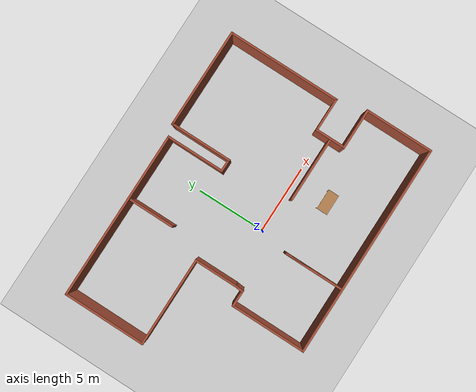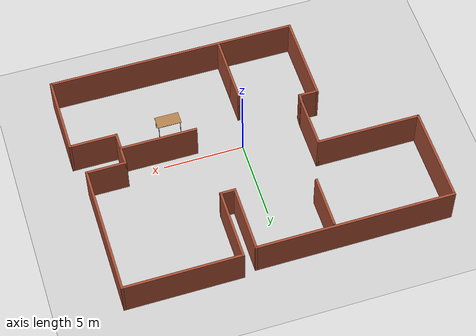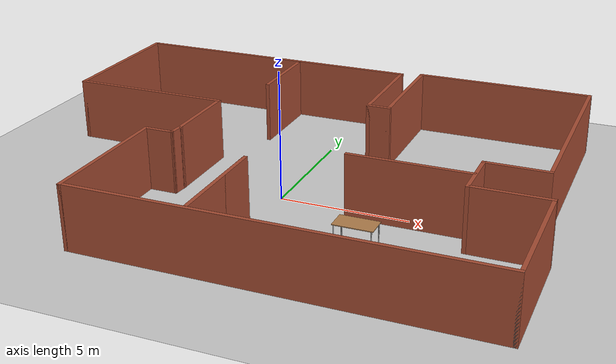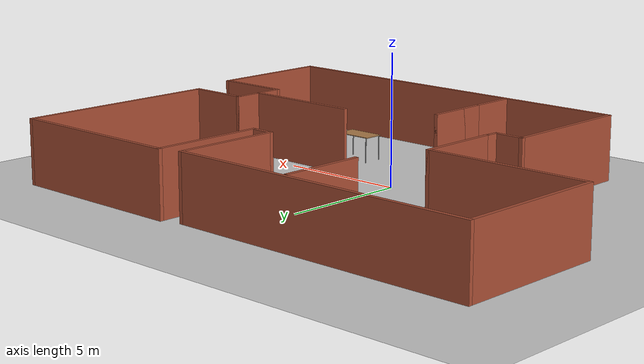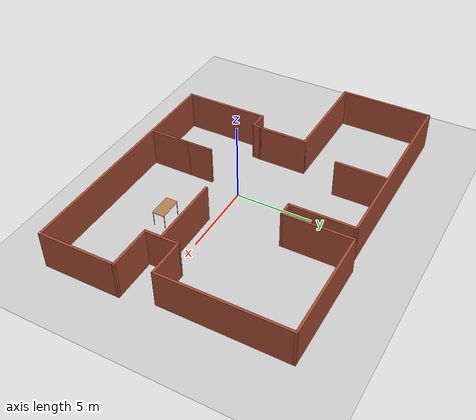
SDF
<sdf version="1.7">
 <world name="default">
  <light name="sun" type="directional">
   <pose>0 0 10 0 -0 0</pose>
   <diffuse>0.8 0.8 0.8 1</diffuse>
   <specular>0.2 0.2 0.2 1</specular>
   <attenuation>
    <range>1000</range>
    <constant>0.9</constant>
    <linear>0.01</linear>
    <quadratic>0.001</quadratic>
   </attenuation>
   <direction>-0.5 0.1 -0.9</direction>
   <spot><inner_angle>0</inner_angle><outer_angle>0</outer_angle><falloff>0</falloff></spot>
  </light>
  <model name="ground_plane">
   <static>1</static>
   <link name="link">
    <collision name="collision">
     <geometry><plane><normal>0 0 1</normal><size>100 100</size></plane></geometry>
     <surface>
      <contact><collide_bitmask>65535</collide_bitmask></contact>
      <friction><ode><mu>100</mu><mu2>50</mu2></ode></friction>
     </surface>
    </collision>
    <visual name="visual">
     <cast_shadows>0</cast_shadows>
     <geometry><plane><normal>0 0 1</normal><size>100 100</size></plane></geometry>
     <material>
      <script><uri>file://media/materials/scripts/gazebo.material</uri><name>Gazebo/Grey</name></script>
     </material>
    </visual>
   </link>
  </model>
  <gravity>0 0 -9.8</gravity>
  <magnetic_field>6e-06 2.3e-05 -4.2e-05</magnetic_field>
  <atmosphere type="adiabatic"/>
  <physics type="ode">
   <max_step_size>0.001</max_step_size>
   <real_time_factor>1</real_time_factor>
   <real_time_update_rate>1000</real_time_update_rate>
  </physics>
  <scene><ambient>0.4 0.4 0.4 1</ambient><background>0.7 0.7 0.7 1</background><shadows>1</shadows></scene>
  <spherical_coordinates>
   <surface_model>EARTH_WGS84</surface_model>
   <latitude_deg>0</latitude_deg>
   <longitude_deg>0</longitude_deg>
   <elevation>0</elevation>
   <heading_deg>0</heading_deg>
  </spherical_coordinates>
  <model name="my_frist_world">
   <pose>0.015 1.175 0 0 -0 0</pose>
   <link name="Wall_0">
    <collision name="Wall_0_Collision">
     <geometry><box><size>5.5 0.15 2.5</size></box></geometry>
     <pose>0 0 1.25 0 -0 0</pose>
    </collision>
    <visual name="Wall_0_Visual">
     <pose>0 0 1.25 0 -0 0</pose>
     <geometry><box><size>5.5 0.15 2.5</size></box></geometry>
     <material>
      <script><uri>file://media/materials/scripts/gazebo.material</uri><name>Gazebo/Bricks</name></script>
      <ambient>1 1 1 1</ambient>
     </material>
     <meta><layer>0</layer></meta>
    </visual>
    <pose>-5.075 -4.85 0 0 -0 -1.5708</pose>
   </link>
   <link name="Wall_1">
    <collision name="Wall_1_Collision">
     <geometry><box><size>15.5 0.15 2.5</size></box></geometry>
     <pose>0 0 1.25 0 -0 0</pose>
    </collision>
    <visual name="Wall_1_Visual">
     <pose>0 0 1.25 0 -0 0</pose>
     <geometry><box><size>15.5 0.15 2.5</size></box></geometry>
     <material>
      <script><uri>file://media/materials/scripts/gazebo.material</uri><name>Gazebo/Bricks</name></script>
      <ambient>0.996078 0.47451 0.0196078 1</ambient>
     </material>
     <meta><layer>0</layer></meta>
    </visual>
    <pose>2.6 -7.525 0 0 -0 0</pose>
   </link>
   <link name="Wall_10">
    <collision name="Wall_10_Collision">
     <geometry><box><size>4.5 0.15 2.5</size></box></geometry>
     <pose>0 0 1.25 0 -0 0</pose>
    </collision>
    <visual name="Wall_10_Visual">
     <pose>0 0 1.25 0 -0 0</pose>
     <geometry><box><size>4.5 0.15 2.5</size></box></geometry>
     <material>
      <script><uri>file://media/materials/scripts/gazebo.material</uri><name>Gazebo/Bricks</name></script>
      <ambient>1 1 1 1</ambient>
     </material>
     <meta><layer>0</layer></meta>
    </visual>
    <pose>2.675 5.35 0 0 -0 -1.5708</pose>
   </link>
   <link name="Wall_11">
    <collision name="Wall_11_Collision">
     <geometry><box><size>1 0.15 2.5</size></box></geometry>
     <pose>0 0 1.25 0 -0 0</pose>
    </collision>
    <visual name="Wall_11_Visual">
     <pose>0 0 1.25 0 -0 0</pose>
     <geometry><box><size>1 0.15 2.5</size></box></geometry>
     <material>
      <script><uri>file://media/materials/scripts/gazebo.material</uri><name>Gazebo/Bricks</name></script>
      <ambient>1 1 1 1</ambient>
     </material>
     <meta><layer>0</layer></meta>
    </visual>
    <pose>2.25 3.175 0 0 -0 3.14159</pose>
   </link>
   <link name="Wall_12">
    <collision name="Wall_12_Collision">
     <geometry><box><size>4.25 0.15 2.5</size></box></geometry>
     <pose>0 0 1.25 0 -0 0</pose>
    </collision>
    <visual name="Wall_12_Visual">
     <pose>0 0 1.25 0 -0 0</pose>
     <geometry><box><size>4.25 0.15 2.5</size></box></geometry>
     <material>
      <script><uri>file://media/materials/scripts/gazebo.material</uri><name>Gazebo/Bricks</name></script>
      <ambient>1 1 1 1</ambient>
     </material>
     <meta><layer>0</layer></meta>
    </visual>
    <pose>1.825 5.225 0 0 -0 1.5708</pose>
   </link>
   <link name="Wall_13">
    <collision name="Wall_13_Collision">
     <geometry><box><size>12.25 0.15 2.5</size></box></geometry>
     <pose>0 0 1.25 0 -0 0</pose>
    </collision>
    <visual name="Wall_13_Visual">
     <pose>0 0 1.25 0 -0 0</pose>
     <geometry><box><size>12.25 0.15 2.5</size></box></geometry>
     <material>
      <script><uri>file://media/materials/scripts/gazebo.material</uri><name>Gazebo/Bricks</name></script>
      <ambient>1 1 1 1</ambient>
     </material>
     <meta><layer>0</layer></meta>
    </visual>
    <pose>-4.225 7.275 0 0 -0 3.14159</pose>
   </link>
   <link name="Wall_14">
    <collision name="Wall_14_Collision">
     <geometry><box><size>6 0.15 2.5</size></box></geometry>
     <pose>0 0 1.25 0 -0 0</pose>
    </collision>
    <visual name="Wall_14_Visual">
     <pose>0 0 1.25 0 -0 0</pose>
     <geometry><box><size>6 0.15 2.5</size></box></geometry>
     <material>
      <script><uri>file://media/materials/scripts/gazebo.material</uri><name>Gazebo/Bricks</name></script>
      <ambient>1 1 1 1</ambient>
     </material>
     <meta><layer>0</layer></meta>
    </visual>
    <pose>-10.275 4.35 0 0 -0 -1.5708</pose>
   </link>
   <link name="Wall_15">
    <collision name="Wall_15_Collision">
     <geometry><box><size>6.5 0.15 2.5</size></box></geometry>
     <pose>0 0 1.25 0 -0 0</pose>
    </collision>
    <visual name="Wall_15_Visual">
     <pose>0 0 1.25 0 -0 0</pose>
     <geometry><box><size>6.5 0.15 2.5</size></box></geometry>
     <material>
      <script><uri>file://media/materials/scripts/gazebo.material</uri><name>Gazebo/Bricks</name></script>
      <ambient>1 1 1 1</ambient>
     </material>
     <meta><layer>0</layer></meta>
    </visual>
    <pose>-7.1 1.425 0 0 -0 0</pose>
   </link>
   <link name="Wall_16">
    <collision name="Wall_16_Collision">
     <geometry><box><size>3.25 0.15 2.5</size></box></geometry>
     <pose>0 0 1.25 0 -0 0</pose>
    </collision>
    <visual name="Wall_16_Visual">
     <pose>0 0 1.25 0 -0 0</pose>
     <geometry><box><size>3.25 0.15 2.5</size></box></geometry>
     <material>
      <script><uri>file://media/materials/scripts/gazebo.material</uri><name>Gazebo/Bricks</name></script>
      <ambient>1 1 1 1</ambient>
     </material>
     <meta><layer>0</layer></meta>
    </visual>
    <pose>-3.925 -0.125 0 0 -0 -1.5708</pose>
   </link>
   <link name="Wall_2">
    <collision name="Wall_2_Collision">
     <geometry><box><size>0.15 0.15 2.5</size></box></geometry>
     <pose>0 0 1.25 0 -0 0</pose>
    </collision>
    <visual name="Wall_2_Visual">
     <pose>0 0 1.25 0 -0 0</pose>
     <geometry><box><size>0.15 0.15 2.5</size></box></geometry>
     <material>
      <script><uri>file://media/materials/scripts/gazebo.material</uri><name>Gazebo/Grey</name></script>
      <ambient>1 1 1 1</ambient>
     </material>
     <meta><layer>0</layer></meta>
    </visual>
    <pose>10.275 -7.525 0 0 -0 0</pose>
   </link>
   <link name="Wall_22">
    <collision name="Wall_22_Collision">
     <geometry><box><size>1.25 0.15 2.5</size></box></geometry>
     <pose>0 0 1.25 0 -0 0</pose>
    </collision>
    <visual name="Wall_22_Visual">
     <pose>0 0 1.25 0 -0 0</pose>
     <geometry><box><size>1.25 0.15 2.5</size></box></geometry>
     <material>
      <script><uri>file://media/materials/scripts/gazebo.material</uri><name>Gazebo/Bricks</name></script>
      <ambient>1 1 1 1</ambient>
     </material>
     <meta><layer>0</layer></meta>
    </visual>
    <pose>-4.525 -2.175 0 0 -0 0</pose>
   </link>
   <link name="Wall_23">
    <collision name="Wall_23_Collision">
     <geometry><box><size>0.652494 0.15 2.5</size></box></geometry>
     <pose>0 0 1.25 0 -0 0</pose>
    </collision>
    <visual name="Wall_23_Visual">
     <pose>0 0 1.25 0 -0 0</pose>
     <geometry><box><size>0.652494 0.15 2.5</size></box></geometry>
     <material>
      <script><uri>file://media/materials/scripts/gazebo.material</uri><name>Gazebo/Bricks</name></script>
      <ambient>1 1 1 1</ambient>
     </material>
     <meta><layer>0</layer></meta>
    </visual>
    <pose>-3.95 -1.925 0 0 -0 1.47113</pose>
   </link>
   <link name="Wall_25">
    <collision name="Wall_25_Collision">
     <geometry><box><size>4.25 0.15 2.5</size></box></geometry>
     <pose>0 0 1.25 0 -0 0</pose>
    </collision>
    <visual name="Wall_25_Visual">
     <pose>0 0 1.25 0 -0 0</pose>
     <geometry><box><size>4.25 0.15 2.5</size></box></geometry>
     <material>
      <script><uri>file://media/materials/scripts/gazebo.material</uri><name>Gazebo/Bricks</name></script>
      <ambient>1 1 1 1</ambient>
     </material>
     <meta><layer>0</layer></meta>
    </visual>
    <pose>-0.406634 -5.32437 0 0 -0 1.5708</pose>
   </link>
   <link name="Wall_26">
    <collision name="Wall_26_Collision">
     <geometry><box><size>2.5 0.15 2.5</size></box></geometry>
     <pose>0 0 1.25 0 -0 0</pose>
    </collision>
    <visual name="Wall_26_Visual">
     <pose>0 0 1.25 0 -0 0</pose>
     <geometry><box><size>2.5 0.15 2.5</size></box></geometry>
     <material>
      <script><uri>file://media/materials/scripts/gazebo.material</uri><name>Gazebo/Bricks</name></script>
      <ambient>0.996078 0.47451 0.0196078 1</ambient>
     </material>
     <meta><layer>0</layer></meta>
    </visual>
    <pose>-0.406634 -4.44937 0 0 -0 -1.5708</pose>
   </link>
   <link name="Wall_28">
    <collision name="Wall_28_Collision">
     <geometry><box><size>3.25 0.15 2.5</size></box></geometry>
     <pose>0 0 1.25 0 -0 0</pose>
    </collision>
    <visual name="Wall_28_Visual">
     <pose>0 0 1.25 0 -0 0</pose>
     <geometry><box><size>3.25 0.15 2.5</size></box></geometry>
     <material>
      <script><uri>file://media/materials/scripts/gazebo.material</uri><name>Gazebo/Bricks</name></script>
      <ambient>1 1 1 1</ambient>
     </material>
     <meta><layer>0</layer></meta>
    </visual>
    <pose>-2.93365 5.51954 0 0 -0 -1.5708</pose>
   </link>
   <link name="Wall_30">
    <collision name="Wall_30_Collision">
     <geometry><box><size>4.75 0.15 2.5</size></box></geometry>
     <pose>0 0 1.25 0 -0 0</pose>
    </collision>
    <visual name="Wall_30_Visual">
     <pose>0 0 1.25 0 -0 0</pose>
     <geometry><box><size>4.75 0.15 2.5</size></box></geometry>
     <material>
      <script><uri>file://media/materials/scripts/gazebo.material</uri><name>Gazebo/Bricks</name></script>
      <ambient>1 1 1 1</ambient>
     </material>
     <meta><layer>0</layer></meta>
    </visual>
    <pose>5.08722 -1.65533 0 0 -0 3.14159</pose>
   </link>
   <link name="Wall_4">
    <collision name="Wall_4_Collision">
     <geometry><box><size>5 0.15 2.5</size></box></geometry>
     <pose>0 0 1.25 0 -0 0</pose>
    </collision>
    <visual name="Wall_4_Visual">
     <pose>0 0 1.25 0 -0 0</pose>
     <geometry><box><size>5 0.15 2.5</size></box></geometry>
     <material>
      <script><uri>file://media/materials/scripts/gazebo.material</uri><name>Gazebo/Bricks</name></script>
      <ambient>1 1 1 1</ambient>
     </material>
     <meta><layer>0</layer></meta>
    </visual>
    <pose>10.275 -5.1 0 0 -0 1.5708</pose>
   </link>
   <link name="Wall_5">
    <collision name="Wall_5_Collision">
     <geometry><box><size>3 0.15 2.5</size></box></geometry>
     <pose>0 0 1.25 0 -0 0</pose>
    </collision>
    <visual name="Wall_5_Visual">
     <pose>0 0 1.25 0 -0 0</pose>
     <geometry><box><size>3 0.15 2.5</size></box></geometry>
     <material>
      <script><uri>file://media/materials/scripts/gazebo.material</uri><name>Gazebo/Bricks</name></script>
      <ambient>1 1 1 1</ambient>
     </material>
     <meta><layer>0</layer></meta>
    </visual>
    <pose>8.85 -2.675 0 0 -0 3.14159</pose>
   </link>
   <link name="Wall_6">
    <collision name="Wall_6_Collision">
     <geometry><box><size>2.25 0.15 2.5</size></box></geometry>
     <pose>0 0 1.25 0 -0 0</pose>
    </collision>
    <visual name="Wall_6_Visual">
     <pose>0 0 1.25 0 -0 0</pose>
     <geometry><box><size>2.25 0.15 2.5</size></box></geometry>
     <material>
      <script><uri>file://media/materials/scripts/gazebo.material</uri><name>Gazebo/Bricks</name></script>
      <ambient>1 1 1 1</ambient>
     </material>
     <meta><layer>0</layer></meta>
    </visual>
    <pose>7.425 -1.625 0 0 -0 1.5708</pose>
   </link>
   <link name="Wall_7">
    <collision name="Wall_7_Collision">
     <geometry><box><size>2.5 0.15 2.5</size></box></geometry>
     <pose>0 0 1.25 0 -0 0</pose>
    </collision>
    <visual name="Wall_7_Visual">
     <pose>0 0 1.25 0 -0 0</pose>
     <geometry><box><size>2.5 0.15 2.5</size></box></geometry>
     <material>
      <script><uri>file://media/materials/scripts/gazebo.material</uri><name>Gazebo/Bricks</name></script>
      <ambient>1 1 1 1</ambient>
     </material>
     <meta><layer>0</layer></meta>
    </visual>
    <pose>8.6 -0.575 0 0 -0 0</pose>
   </link>
   <link name="Wall_8">
    <collision name="Wall_8_Collision">
     <geometry><box><size>8.25 0.15 2.5</size></box></geometry>
     <pose>0 0 1.25 0 -0 0</pose>
    </collision>
    <visual name="Wall_8_Visual">
     <pose>0 0 1.25 0 -0 0</pose>
     <geometry><box><size>8.25 0.15 2.5</size></box></geometry>
     <material>
      <script><uri>file://media/materials/scripts/gazebo.material</uri><name>Gazebo/Bricks</name></script>
      <ambient>1 1 1 1</ambient>
     </material>
     <meta><layer>0</layer></meta>
    </visual>
    <pose>9.775 3.475 0 0 -0 1.5708</pose>
   </link>
   <link name="Wall_9">
    <collision name="Wall_9_Collision">
     <geometry><box><size>7.25 0.15 2.5</size></box></geometry>
     <pose>0 0 1.25 0 -0 0</pose>
    </collision>
    <visual name="Wall_9_Visual">
     <pose>0 0 1.25 0 -0 0</pose>
     <geometry><box><size>7.25 0.15 2.5</size></box></geometry>
     <material>
      <script><uri>file://media/materials/scripts/gazebo.material</uri><name>Gazebo/Bricks</name></script>
      <ambient>1 1 1 1</ambient>
     </material>
     <meta><layer>0</layer></meta>
    </visual>
    <pose>6.225 7.525 0 0 -0 3.14159</pose>
   </link>
   <static>1</static>
  </model>
  <model name="table">
   <static>1</static>
   <link name="link">
    <collision name="surface">
     <pose>0 0 1 0 -0 0</pose>
     <geometry><box><size>1.5 0.8 0.03</size></box></geometry>
     <surface><friction><ode><mu>0.6</mu><mu2>0.6</mu2></ode></friction></surface>
    </collision>
    <visual name="visual1">
     <pose>0 0 1 0 -0 0</pose>
     <geometry><box><size>1.5 0.8 0.03</size></box></geometry>
     <material>
      <script><uri>file://media/materials/scripts/gazebo.material</uri><name>Gazebo/Wood</name></script>
     </material>
    </visual>
    <collision name="front_left_leg">
     <pose>0.68 0.38 0.5 0 -0 0</pose>
     <geometry><cylinder><radius>0.02</radius><length>1</length></cylinder></geometry>
    </collision>
    <visual name="front_left_leg">
     <pose>0.68 0.38 0.5 0 -0 0</pose>
     <geometry><cylinder><radius>0.02</radius><length>1</length></cylinder></geometry>
     <material>
      <script><uri>file://media/materials/scripts/gazebo.material</uri><name>Gazebo/Grey</name></script>
     </material>
    </visual>
    <collision name="front_right_leg">
     <pose>0.68 -0.38 0.5 0 -0 0</pose>
     <geometry><cylinder><radius>0.02</radius><length>1</length></cylinder></geometry>
    </collision>
    <visual name="front_right_leg">
     <pose>0.68 -0.38 0.5 0 -0 0</pose>
     <geometry><cylinder><radius>0.02</radius><length>1</length></cylinder></geometry>
     <material>
      <script><uri>file://media/materials/scripts/gazebo.material</uri><name>Gazebo/Grey</name></script>
     </material>
    </visual>
    <collision name="back_right_leg">
     <pose>-0.68 -0.38 0.5 0 -0 0</pose>
     <geometry><cylinder><radius>0.02</radius><length>1</length></cylinder></geometry>
    </collision>
    <visual name="back_right_leg">
     <pose>-0.68 -0.38 0.5 0 -0 0</pose>
     <geometry><cylinder><radius>0.02</radius><length>1</length></cylinder></geometry>
     <material>
      <script><uri>file://media/materials/scripts/gazebo.material</uri><name>Gazebo/Grey</name></script>
     </material>
    </visual>
    <collision name="back_left_leg">
     <pose>-0.68 0.38 0.5 0 -0 0</pose>
     <geometry><cylinder><radius>0.02</radius><length>1</length></cylinder></geometry>
    </collision>
    <visual name="back_left_leg">
     <pose>-0.68 0.38 0.5 0 -0 0</pose>
     <geometry><cylinder><radius>0.02</radius><length>1</length></cylinder></geometry>
     <material>
      <script><uri>file://media/materials/scripts/gazebo.material</uri><name>Gazebo/Grey</name></script>
     </material>
    </visual>
   </link>
   <pose>3.984 -2.65367 0 0 -0 0</pose>
  </model>
 </world>
</sdf>
